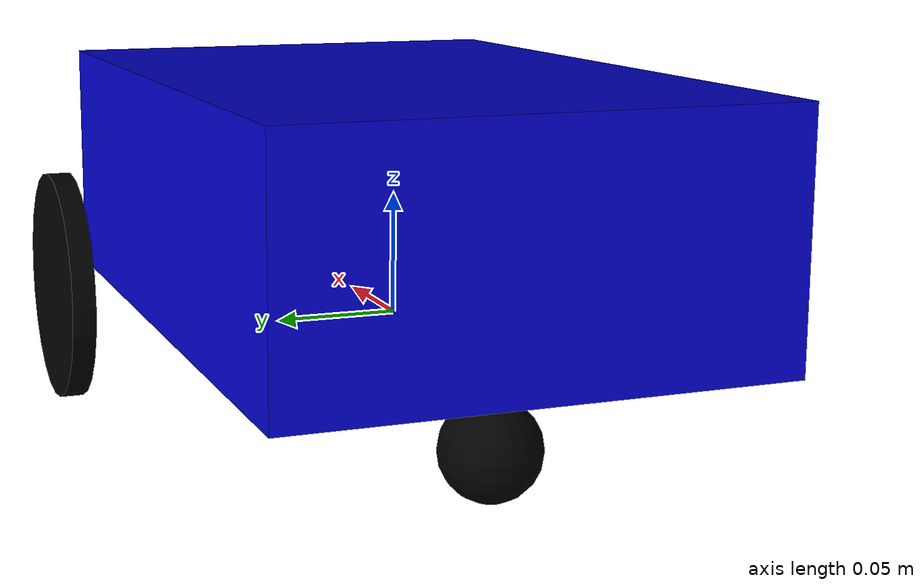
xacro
<?xml version="1.0"?>
<robot xmlns:xacro="http://www.ros.org/wiki/xacro" name="test_robot" >

  <xacro:property name="body_len" value="0.3"/>
  <xacro:property name="body_width" value="0.2"/>
  <xacro:property name="body_height" value="0.1"/>
  <xacro:property name="wheel_radius" value="0.05"/>
  <xacro:property name="wheel_width" value="0.01"/>

  <link name="base_link" />

  <joint name="zero_joint" type="fixed">
    <parent link="base_link"/>
    <child link="body_link"/>
    <origin xyz="0 0 0" rpy="0 0 0"/>
  </joint>

  <link name="body_link">
    <visual>
      <geometry>
        <box size="${body_len} ${body_width} ${body_height}" />
      </geometry>
      <origin xyz="0 0 0.05" rpy="0 0 0"/>
      <material name="blue">
	    <color rgba="0 0 .8 1"/>
      </material>
    </visual>
    <collision>
      <geometry>
        <box size="${body_len} ${body_width} ${body_height}" />
      </geometry>
      <origin xyz="0 0 0.05" rpy="0 0 0"/>
    </collision>
    <inertial>
      <mass value="3"/>
      <inertia ixx="1e-4" ixy="0.0" ixz="0.0" iyy="1e-4" iyz="0.0" izz="1e-4"/>
    </inertial>
  </link>

  <xacro:macro name="wheel" params="name dx dy">
    <link name="${name}_link">
        <visual>
        <geometry>
            <cylinder length="${wheel_width}" radius="${wheel_radius}"/>
        </geometry>
        <origin rpy="${pi/2} 0 0" xyz="0 0 0"/>
        <material name="black">
            <color rgba="0 0 0 1"/>
        </material>
        </visual>
        <collision>
        <geometry>
            <cylinder length="${wheel_width}" radius="${wheel_radius}"/>
        </geometry>
        <origin rpy="${pi/2} 0 0" xyz="0 0 0"/>
        </collision>
        <inertial>
        <mass value="0.1"/>
        <inertia izz="1e-5" ixy="0.0" ixz="0.0" ixx="1e-5" iyz="0.0" iyy="1e-5"/>
        </inertial>
    </link>
    <joint name="${name}_j" type="continuous">
        <origin xyz="${dx} ${dy} 0" rpy="0 0 0"/>
        <parent link="body_link"/>
        <axis xyz="0 1 0"/>
        <child link="${name}_link"/>
    </joint>

    <transmission name="${name}_transm">
      <type>transmission_interface/SimpleTransmission</type>
      <joint name="${name}_j">
        <hardwareInterface>hardware_interface/VelocityJointInterface</hardwareInterface>
      </joint>
      <actuator name="${name}_motor">
        <mechanicalReduction>1</mechanicalReduction>
        <hardwareInterface>hardware_interface/VelocityJointInterface</hardwareInterface>
      </actuator>
    </transmission>
    <gazebo reference="caster_link">
            <mu1>3</mu1>
            <mu2>3</mu2>
    </gazebo>

  </xacro:macro>

  <xacro:wheel name="lwheel" dx="0.1" dy="0.12"  />
  <xacro:wheel name="rwheel" dx="0.1" dy="-0.12"  />

  <link name="caster_link">
    <visual>
      <geometry>
        <sphere radius="0.02"/>
      </geometry>
      <material name="black">
        <color rgba="0 0 0 1"/>
      </material>
    </visual>
    <collision>
      <geometry>
        <sphere radius="0.02"/>
      </geometry>
    </collision>
    <inertial>
      <mass value="0.05"/>
      <inertia izz="1e-5" ixy="0.0" ixz="0.0" ixx="1e-5" iyz="0.0" iyy="1e-5"/>
    </inertial>
  </link>

  <joint name="caster_j" type="fixed">
    <origin xyz="-0.1 0 -0.03" rpy="0 0 0"/>
    <parent link="body_link"/>
    <child link="caster_link"/>
  </joint>

  <gazebo reference="caster_link">
            <mu1>0.01</mu1>
            <mu2>0.01</mu2>
  </gazebo>
  <gazebo>
    <plugin name="gazebo_ros_control" filename="libgazebo_ros_control.so">
        <robotSimType>gazebo_ros_control/DefaultRobotHWSim</robotSimType>
        <legacyModeNS>true</legacyModeNS>
        <!-- Control period is recommended to be the same as the world simulation period -->
        <controlPeriod>0.001</controlPeriod>
    </plugin>
  </gazebo>

  <gazebo>
    <plugin name="p3d_base_controller" filename="libgazebo_ros_p3d.so">
      <alwaysOn>true</alwaysOn>
      <updateRate>10.0</updateRate>
      <bodyName>base_link</bodyName>
      <topicName>gazebo_ground_truth_odom</topicName>
      <gaussianNoise>0.01</gaussianNoise>
      <frameName>map</frameName>
      <xyzOffsets>0 0 0</xyzOffsets>
      <rpyOffsets>0 0 0</rpyOffsets>
    </plugin>
  </gazebo>

</robot>
